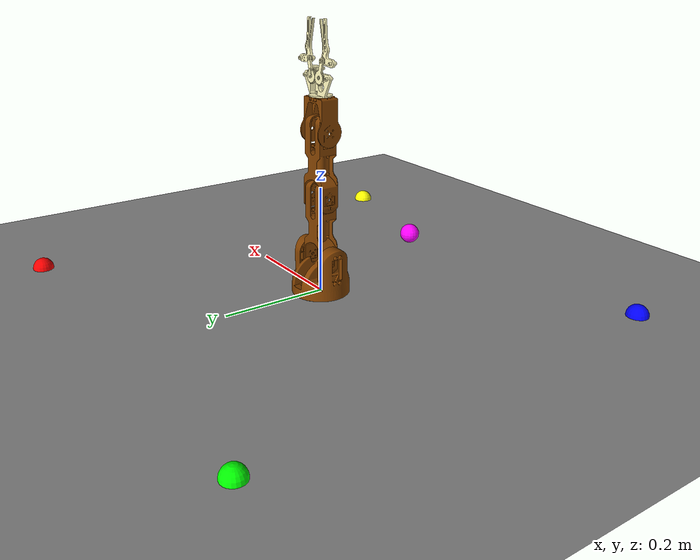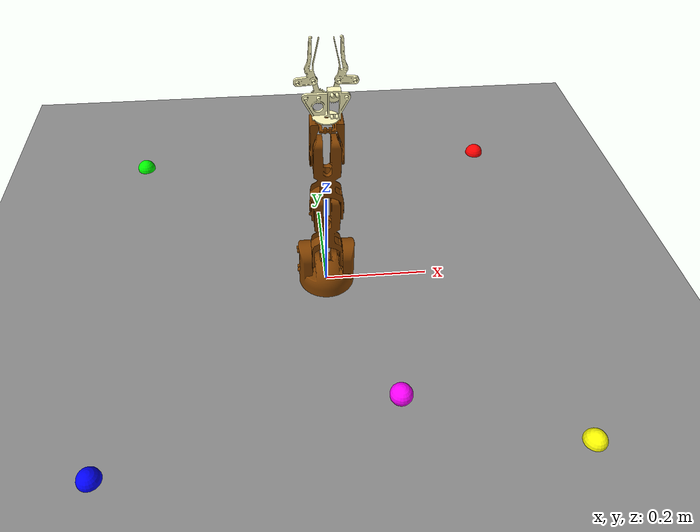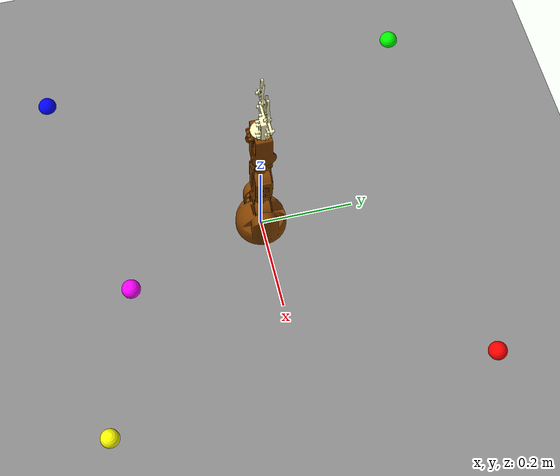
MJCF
<mujoco model="braccio scene">
  <include file="my-braccio.xml"/>

  <statistic center="0 0 0" extent="1"/>

  <visual>
    <headlight diffuse="0.6 0.6 0.6" ambient="0.3 0.3 0.3" specular="0 0 0"/>
    <rgba haze="0.15 0.25 0.35 1"/>
    <global azimuth="140" elevation="-30"/>
  </visual>

  <asset>
    <texture type="skybox" builtin="gradient" rgb1="0.3 0.5 0.7" rgb2="0 0 0" width="512" height="3072"/>
    <texture type="2d" name="groundplane" builtin="checker"
         rgb1="0.8 0.8 0.8" rgb2="0.3 0.3 0.3" mark="edge"
         markrgb="0.8 0.8 0.8" width="300" height="300"/>

    <material name="groundplane" texture="groundplane" texuniform="true" texrepeat="5 5" reflectance="0.2"/>

    <!-- Kalibrasyon için renkli referans noktaları -->
    <material name="ref_red" rgba="1 0 0 1"/>
    <material name="ref_green" rgba="0 1 0 1"/>
    <material name="ref_blue" rgba="0 0 1 1"/>
    <material name="ref_yellow" rgba="1 1 0 1"/>
  </asset>

  <worldbody>
    <camera name="top_cam" pos="0 0 2" euler="0 0 0"/>
    <camera name="side_cam" pos="-1.5 0 0.1" euler="1.570796 -1.570796 0"/>
    <light pos="0 0 1.5" dir="0 0 -1" directional="true"/>
    <geom name="floor" size="0 0 0.05" type="plane" material="groundplane"/>

    <!-- Kalibrasyon referans noktaları (dünya koordinatları bilinen) -->
    <body name="ref_point_1" pos="0.4 0.4 0">
      <geom name="ref_geom_1" type="sphere" size="0.02" material="ref_red"/>
    </body>
    <body name="ref_point_2" pos="-0.4 0.4 0">
      <geom name="ref_geom_2" type="sphere" size="0.02" material="ref_green"/>
    </body>
    <body name="ref_point_3" pos="-0.4 -0.4 0">
      <geom name="ref_geom_3" type="sphere" size="0.02" material="ref_blue"/>
    </body>
    <body name="ref_point_4" pos="0.4 -0.4 0">
      <geom name="ref_geom_4" type="sphere" size="0.02" material="ref_yellow"/>
    </body>

    <body name="sphere_body" pos="0.1 -0.3 0.02">
      <geom name="sphere_geom" type="sphere" size="0.02" rgba="1 0 1 1"/>
      <joint name="sphere_joint" type="free"/>
    </body>

  </worldbody>
</mujoco>

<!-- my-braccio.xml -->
<mujoco model="my-braccio">
  <compiler angle="radian" meshdir="assets/"/>

  <option cone="elliptic" impratio="10"/>

  <asset>
    <mesh name="Base" file="Base.STL"/>
    <mesh name="Rolling_Base" file="Rolling_Base.STL"/>
    <mesh name="Arm_1" file="Arm.STL"/>
    <mesh name="Arm_2" file="Arm.STL"/>
    <mesh name="Wrist" file="Wrist.STL"/>
    <mesh name="Hand" file="Hand.STL"/>
    <mesh name="Sup_Servo" file="Sup_Servo.STL"/>
    <mesh name="Sup_Finger_Base_1" file="Sup_Finger_Base.STL"/>
    <mesh name="Sup_Finger_Base_2" file="Sup_Finger_Base.STL"/>
    <mesh name="Finger_1" file="Finger.STL"/>
    <mesh name="Finger_2" file="Finger.STL"/>
    <mesh name="Sup_Finger_1" file="Sup_Finger.STL"/>
    <mesh name="Sup_Finger_2" file="Sup_Finger.STL"/>
    <mesh name="Sup_Finger_3" file="Sup_Finger.STL"/>
    <mesh name="Sup_Finger_4" file="Sup_Finger.STL"/>
    <material name="red" rgba="1 0 0 1"/>
    <material name="blue" rgba="0 0 1 1"/>
    <material name="green" rgba="0 1 0 1"/>
    <material name="purple" rgba="0.5 0.1 0.6 1" specular="0.5" shininess="0.7"/>
    <material name="yellow" rgba="1 1 0 1"/>
    <material name="orange" rgba="0.5 0.25 0.0 1.0"/>
    <material name="cream_yellowish" rgba="1.0 0.976 0.749 1.0"/>
  </asset>

  <default>
    <joint armature="0.1" damping="0.1" limited="true" frictionloss="0.1" range="-3.14 3.14"/>
    <position kp="50" dampratio="1" forcerange="-35 35" ctrlrange="-3.14158 3.14158"/>
  </default>

  <worldbody>
    <body name="Base" pos="0 0 0">
      <geom name="base_geom" type="mesh" mesh="Base" contype="1" conaffinity="1" material="orange"/>

      <body name="Rolling_Base" pos="0 0 0">
        <joint name="base_rotation" type="hinge" pos="0 0 0" axis="0 0 1" range="-1.570796 1.570796"/>
        <geom name="rolling_base_geom" type="mesh" contype="0" conaffinity="0" mesh="Rolling_Base" material="orange"/>

        <body name="Arm_1" pos="0 0 0.065" euler="0 0 0">
          <joint name="shoulder_joint" type="hinge" pos="0 0 0" axis="1 0 0" range="-1.22173 1.22173"/>
          <geom name="arm_1_geom" type="mesh" mesh="Arm_1" material="orange"/>
          <inertial pos="0 0.06 0.03" mass="0.16" diaginertia="0.00021 0.00016 0.00007"/>

          <body name="Arm_2" pos="0 0 0.12" euler="0 0 0">
            <joint name="elbow_joint" type="hinge" pos="0 0 0" axis="1 0 0" range="-1.570796 1.570796"/>
            <geom name="arm_2_geom" type="mesh" mesh="Arm_2" material="orange"/>

            <body name="Wrist" pos="0 0 0.12" euler="-1.570796 0 0">
              <joint name="wrist_joint" type="hinge" pos="0 0 0" axis="1 0 0" range="-1.570796 1.570796"/>
              <geom name="wrist_geom" type="mesh" mesh="Wrist" material="orange"/>

              <body name="Hand" pos="0 -0.062 0">
                <joint name="hand_joint" type="hinge" pos="0 0 0" axis="0 1 0" range="-1.570796 1.570796"/>
                <geom name="hand_geom" type="mesh" mesh="Hand" material="cream_yellowish"/>

                <body name="Sup_Servo" pos="0.01210 -0.034 0.01250" euler="-1.570796 1.500983 1.570796">
                  <joint name="sup_servo_joint" type="hinge" pos="0 0 0" axis="1 0 0" range="-0.2 0.1"/>
                  <geom name="sup_servo_geom" type="mesh" mesh="Sup_Servo" material="cream_yellowish"/>

                  <body name="Sup_Finger_Base_1" pos="0 0 0" euler="1.570796 0 0">
                    <geom name="sup_finger_base_geom" type="mesh" mesh="Sup_Finger_Base_1" material="cream_yellowish"/>

                    <body name="Finger_1" pos="0.005 0.00544 0.02955" euler="0 0 0">
                      <geom name="finger_geom" type="mesh" mesh="Finger_1" material="cream_yellowish" friction="10 1 1"/>

                    </body>
                  </body>
                </body>

                <body name="Sup_Finger_Base_2" pos="-0.01205 -0.034 0.01250" euler="1.570796 -0.436332 -1.570796">
                  <geom name="sup_finger_base_2_geom" type="mesh" mesh="Sup_Finger_Base_2" material="cream_yellowish"/>
                  <joint name="finger_sync_joint" type="hinge" pos="0 0 0" axis="1 0 0" range="-0.1 0.2"/>

                  <body name="Finger_2" pos="0.005 0.00544 0.02955" euler="-0.365472 0.000000 3.141593">
                    <geom name="finger_2_geom" type="mesh" mesh="Finger_2" material="cream_yellowish" friction="10 1 1"/>

                  </body>
                </body>
              </body>
            </body>
          </body>
        </body>
      </body>
    </body>
  </worldbody>

  <actuator>
    <position name="base_motor" joint="base_rotation"/>
    <position name="shoulder_motor" joint="shoulder_joint"/>
    <position name="elbow_motor" joint="elbow_joint" />
    <position name="wrist_motor" joint="wrist_joint"/>
    <position name="hand_motor" joint="hand_joint"/>
    <position name="sup_servo_motor" gear="20" joint="sup_servo_joint"/>
  </actuator>

<equality>
  <joint joint1="sup_servo_joint" joint2="finger_sync_joint" polycoef="0 -1"/>
</equality>

<keyframe>
  <key name="home" qpos="0 0 0 0 0 0 0  0 0 0 0 0 0 0" ctrl="0 0 0 0 0 0"/> <!-- qpos'taki son 7 basamak, sahneye eklenen spehere objesi için-->
</keyframe>

</mujoco>
